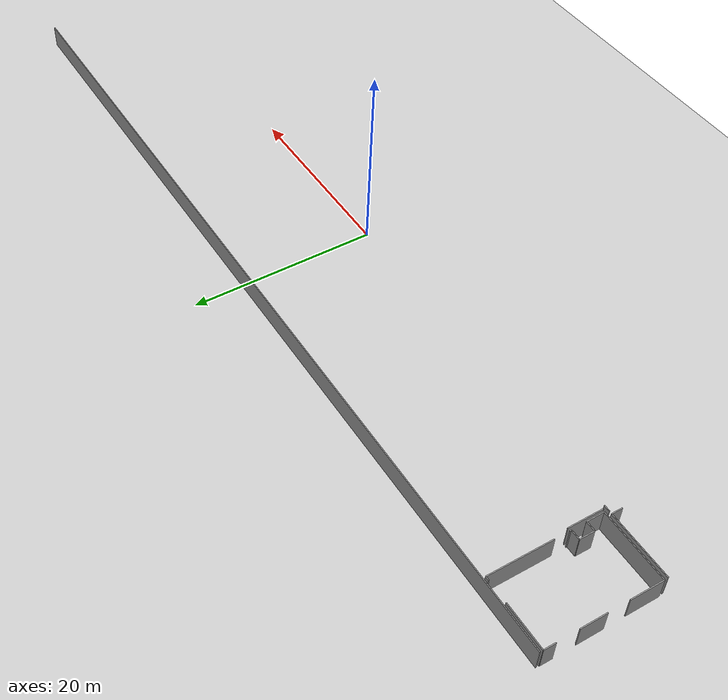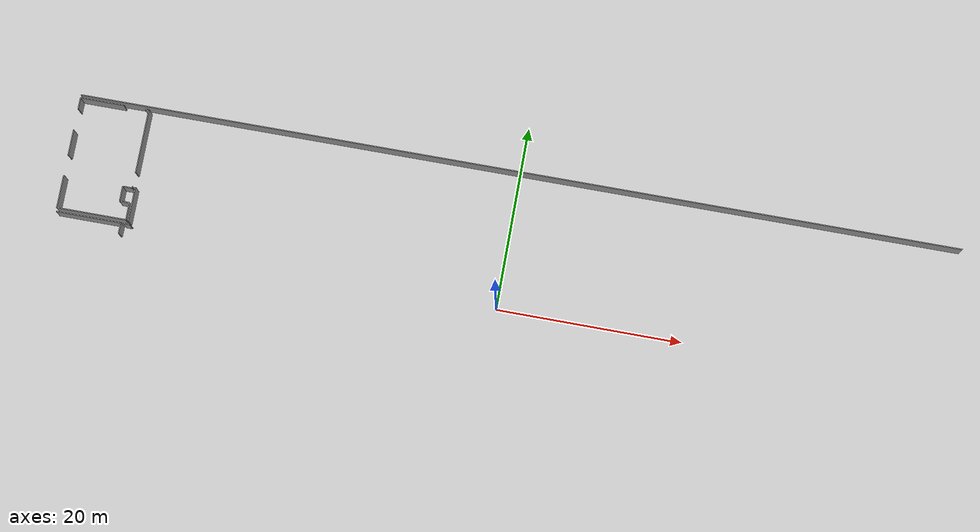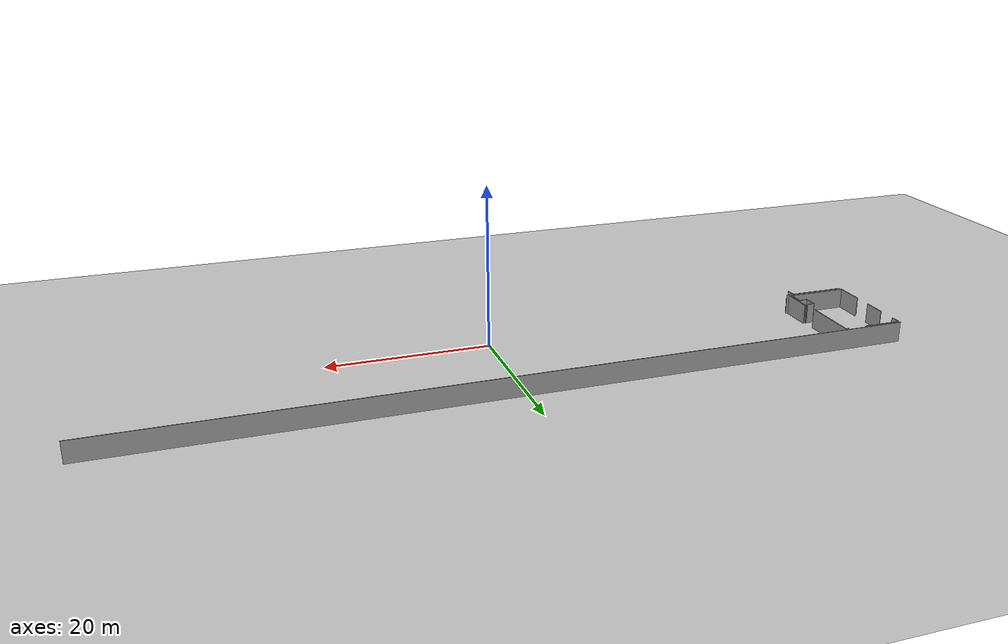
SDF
<sdf version="1.6">
 <world name="default">
  <model name="ground_plane">
   <static>1</static>
   <link name="link">
    <collision name="collision">
     <geometry><plane><normal>0 0 1</normal><size>100 100</size></plane></geometry>
     <surface><friction><ode><mu>100</mu><mu2>50</mu2></ode></friction></surface>
    </collision>
    <visual name="visual">
     <cast_shadows>0</cast_shadows>
     <geometry><plane><normal>0 0 1</normal><size>100 100</size></plane></geometry>
     <material>
      <script><uri>file://media/materials/scripts/gazebo.material</uri><name>Gazebo/Grey</name></script>
     </material>
    </visual>
   </link>
  </model>
  <model name="0510032268_A_40_1_102">
   <static>1</static>
   <link name="Wall_0">
    <collision name="Wall_0_Collision">
     <geometry><box><size>7.50722080099 0.1 2.5</size></box></geometry>
     <pose>3.75361040049 0 1.25 0 0 0</pose>
    </collision>
    <visual name="Wall_0_Visual">
     <pose>3.75361040049 0 1.25 0 0 0</pose>
     <geometry><box><size>7.50722080099 0.1 2.5</size></box></geometry>
     <material>
      <script><uri>file://media/materials/scripts/gazebo.material</uri><name>Gazebo/Grey</name></script>
      <ambient>1 1 1 1</ambient>
     </material>
    </visual>
    <pose>7.51686969549 -12.5049672763 0 0 0 3.14159265359</pose>
   </link>
   <link name="Wall_1">
    <collision name="Wall_1_Collision">
     <geometry><box><size>3.57123359847 0.1 2.5</size></box></geometry>
     <pose>1.78561679923 0 1.25 0 0 0</pose>
    </collision>
    <visual name="Wall_1_Visual">
     <pose>1.78561679923 0 1.25 0 0 0</pose>
     <geometry><box><size>3.57123359847 0.1 2.5</size></box></geometry>
     <material>
      <script><uri>file://media/materials/scripts/gazebo.material</uri><name>Gazebo/Grey</name></script>
      <ambient>1 1 1 1</ambient>
     </material>
    </visual>
    <pose>0.0096488945033 -12.5049672763 0 0 0 1.57079632679</pose>
   </link>
   <link name="Wall_2">
    <collision name="Wall_2_Collision">
     <geometry><box><size>2.80478128114 0.1 2.5</size></box></geometry>
     <pose>1.40239064057 0 1.25 0 0 0</pose>
    </collision>
    <visual name="Wall_2_Visual">
     <pose>1.40239064057 0 1.25 0 0 0</pose>
     <geometry><box><size>2.80478128114 0.1 2.5</size></box></geometry>
     <material>
      <script><uri>file://media/materials/scripts/gazebo.material</uri><name>Gazebo/Grey</name></script>
      <ambient>1 1 1 1</ambient>
     </material>
    </visual>
    <pose>0.0096488945033 -6.70318857876 0 0 0 1.57079632679</pose>
   </link>
   <link name="Wall_3">
    <collision name="Wall_3_Collision">
     <geometry><box><size>1.26959138201 0.1 2.5</size></box></geometry>
     <pose>0.634795691007 0 1.25 0 0 0</pose>
    </collision>
    <visual name="Wall_3_Visual">
     <pose>0.634795691007 0 1.25 0 0 0</pose>
     <geometry><box><size>1.26959138201 0.1 2.5</size></box></geometry>
     <material>
      <script><uri>file://media/materials/scripts/gazebo.material</uri><name>Gazebo/Grey</name></script>
      <ambient>1 1 1 1</ambient>
     </material>
    </visual>
    <pose>0.0096488945033 -1.57734033301 0 0 0 1.57079632679</pose>
   </link>
   <link name="Wall_4">
    <collision name="Wall_4_Collision">
     <geometry><box><size>4.75195358374 0.1 2.5</size></box></geometry>
     <pose>2.37597679187 0 1.25 0 0 0</pose>
    </collision>
    <visual name="Wall_4_Visual">
     <pose>2.37597679187 0 1.25 0 0 0</pose>
     <geometry><box><size>4.75195358374 0.1 2.5</size></box></geometry>
     <material>
      <script><uri>file://media/materials/scripts/gazebo.material</uri><name>Gazebo/Grey</name></script>
      <ambient>1 1 1 1</ambient>
     </material>
    </visual>
    <pose>0.0096488945033 -0.307748951 0 0 0 0.0</pose>
   </link>
   <link name="Wall_5">
    <collision name="Wall_5_Collision">
     <geometry><box><size>0.412871117431 0.1 2.5</size></box></geometry>
     <pose>0.206435558715 0 1.25 0 0 0</pose>
    </collision>
    <visual name="Wall_5_Visual">
     <pose>0.206435558715 0 1.25 0 0 0</pose>
     <geometry><box><size>0.412871117431 0.1 2.5</size></box></geometry>
     <material>
      <script><uri>file://media/materials/scripts/gazebo.material</uri><name>Gazebo/Grey</name></script>
      <ambient>1 1 1 1</ambient>
     </material>
    </visual>
    <pose>7.07517885369 -0.307748951 0 0 0 0.0</pose>
   </link>
   <link name="Wall_6">
    <collision name="Wall_6_Collision">
     <geometry><box><size>6.98440306987 0.1 2.5</size></box></geometry>
     <pose>3.49220153494 0 1.25 0 0 0</pose>
    </collision>
    <visual name="Wall_6_Visual">
     <pose>3.49220153494 0 1.25 0 0 0</pose>
     <geometry><box><size>6.98440306987 0.1 2.5</size></box></geometry>
     <material>
      <script><uri>file://media/materials/scripts/gazebo.material</uri><name>Gazebo/Grey</name></script>
      <ambient>1 1 1 1</ambient>
     </material>
    </visual>
    <pose>7.48804997112 -0.307748951 0 0 0 -1.57079632679</pose>
   </link>
   <link name="Wall_7">
    <collision name="Wall_7_Collision">
     <geometry><box><size>0.170379163466 0.1 2.5</size></box></geometry>
     <pose>0.0851895817331 0 1.25 0 0 0</pose>
    </collision>
    <visual name="Wall_7_Visual">
     <pose>0.0851895817331 0 1.25 0 0 0</pose>
     <geometry><box><size>0.170379163466 0.1 2.5</size></box></geometry>
     <material>
      <script><uri>file://media/materials/scripts/gazebo.material</uri><name>Gazebo/Grey</name></script>
      <ambient>1 1 1 1</ambient>
     </material>
    </visual>
    <pose>7.48804997112 -8.84156134348 0 0 0 -1.57079632679</pose>
   </link>
   <link name="Wall_8">
    <collision name="Wall_8_Collision">
     <geometry><box><size>1.0458893805 0.1 2.5</size></box></geometry>
     <pose>0.522944690251 0 1.25 0 0 0</pose>
    </collision>
    <visual name="Wall_8_Visual">
     <pose>0.522944690251 0 1.25 0 0 0</pose>
     <geometry><box><size>1.0458893805 0.1 2.5</size></box></geometry>
     <material>
      <script><uri>file://media/materials/scripts/gazebo.material</uri><name>Gazebo/Grey</name></script>
      <ambient>1 1 1 1</ambient>
     </material>
    </visual>
    <pose>7.48804997112 -9.01194050695 0 0 0 3.14159265359</pose>
   </link>
   <link name="Wall_9">
    <collision name="Wall_9_Collision">
     <geometry><box><size>1.61022274981 0.1 2.5</size></box></geometry>
     <pose>0.805111374904 0 1.25 0 0 0</pose>
    </collision>
    <visual name="Wall_9_Visual">
     <pose>0.805111374904 0 1.25 0 0 0</pose>
     <geometry><box><size>1.61022274981 0.1 2.5</size></box></geometry>
     <material>
      <script><uri>file://media/materials/scripts/gazebo.material</uri><name>Gazebo/Grey</name></script>
      <ambient>1 1 1 1</ambient>
     </material>
    </visual>
    <pose>6.44216059061 -9.01194050695 0 0 0 -1.57079632679</pose>
   </link>
   <link name="Wall_10">
    <collision name="Wall_10_Collision">
     <geometry><box><size>1.05744266208 0.1 2.5</size></box></geometry>
     <pose>0.52872133104 0 1.25 0 0 0</pose>
    </collision>
    <visual name="Wall_10_Visual">
     <pose>0.52872133104 0 1.25 0 0 0</pose>
     <geometry><box><size>1.05744266208 0.1 2.5</size></box></geometry>
     <material>
      <script><uri>file://media/materials/scripts/gazebo.material</uri><name>Gazebo/Grey</name></script>
      <ambient>1 1 1 1</ambient>
     </material>
    </visual>
    <pose>6.44216059061 -10.6221632568 0 0 0 0.0</pose>
   </link>
   <link name="Wall_11">
    <collision name="Wall_11_Collision">
     <geometry><box><size>1.88288318968 0.1 2.5</size></box></geometry>
     <pose>0.941441594842 0 1.25 0 0 0</pose>
    </collision>
    <visual name="Wall_11_Visual">
     <pose>0.941441594842 0 1.25 0 0 0</pose>
     <geometry><box><size>1.88288318968 0.1 2.5</size></box></geometry>
     <material>
      <script><uri>file://media/materials/scripts/gazebo.material</uri><name>Gazebo/Grey</name></script>
      <ambient>1 1 1 1</ambient>
     </material>
    </visual>
    <pose>7.49960325269 -10.6221632568 0 0 0 -1.56162598373</pose>
   </link>
   <link name="Wall_28">
    <collision name="Wall_28_Collision">
     <geometry><box><size>3.77690740235 0.1 2.5</size></box></geometry>
     <pose>1.88845370118 0 1.25 0 0 0</pose>
    </collision>
    <visual name="Wall_28_Visual">
     <pose>1.88845370118 0 1.25 0 0 0</pose>
     <geometry><box><size>3.77690740235 0.1 2.5</size></box></geometry>
     <material>
      <script><uri>file://media/materials/scripts/gazebo.material</uri><name>Gazebo/Grey</name></script>
      <ambient>1 1 1 1</ambient>
     </material>
    </visual>
    <pose>7.78500739537 -12.6414483498 0 0 0 1.57079632679</pose>
   </link>
   <link name="Wall_56">
    <collision name="Wall_56_Collision">
     <geometry><box><size>0.683040163523 0.1 2.5</size></box></geometry>
     <pose>0.341520081762 0 1.25 0 0 0</pose>
    </collision>
    <visual name="Wall_56_Visual">
     <pose>0.341520081762 0 1.25 0 0 0</pose>
     <geometry><box><size>0.683040163523 0.1 2.5</size></box></geometry>
     <material>
      <script><uri>file://media/materials/scripts/gazebo.material</uri><name>Gazebo/Grey</name></script>
      <ambient>1 1 1 1</ambient>
     </material>
    </visual>
    <pose>7.32478051939 -12.9222819636 0 0 0 0.0</pose>
   </link>
   <link name="Wall_70">
    <collision name="Wall_70_Collision">
     <geometry><box><size>7.02185601564 0.1 2.5</size></box></geometry>
     <pose>3.51092800782 0 1.25 0 0 0</pose>
    </collision>
    <visual name="Wall_70_Visual">
     <pose>3.51092800782 0 1.25 0 0 0</pose>
     <geometry><box><size>7.02185601564 0.1 2.5</size></box></geometry>
     <material>
      <script><uri>file://media/materials/scripts/gazebo.material</uri><name>Gazebo/Grey</name></script>
      <ambient>1 1 1 1</ambient>
     </material>
    </visual>
    <pose>0.0245031136729 -12.9081894992 0 0 0 0.0</pose>
   </link>
   <link name="Wall_71">
    <collision name="Wall_71_Collision">
     <geometry><box><size>1.18071998527 0.1 2.5</size></box></geometry>
     <pose>0.590359992636 0 1.25 0 0 0</pose>
    </collision>
    <visual name="Wall_71_Visual">
     <pose>0.590359992636 0 1.25 0 0 0</pose>
     <geometry><box><size>1.18071998527 0.1 2.5</size></box></geometry>
     <material>
      <script><uri>file://media/materials/scripts/gazebo.material</uri><name>Gazebo/Grey</name></script>
      <ambient>1 1 1 1</ambient>
     </material>
    </visual>
    <pose>7.04635912931 -12.9081894992 0 0 0 -1.57079632679</pose>
   </link>
   <link name="Wall_472">
    <collision name="Wall_472_Collision">
     <geometry><box><size>95.5034882023 0.1 2.5</size></box></geometry>
     <pose>47.7517441012 0 1.25 0 0 0</pose>
    </collision>
    <visual name="Wall_472_Visual">
     <pose>47.7517441012 0 1.25 0 0 0</pose>
     <geometry><box><size>95.5034882023 0.1 2.5</size></box></geometry>
     <material>
      <script><uri>file://media/materials/scripts/gazebo.material</uri><name>Gazebo/Grey</name></script>
      <ambient>1 1 1 1</ambient>
     </material>
    </visual>
   </link>
   <pose>-47.9 14.7321752544 0 0 0 0</pose>
  </model>
 </world>
</sdf>
